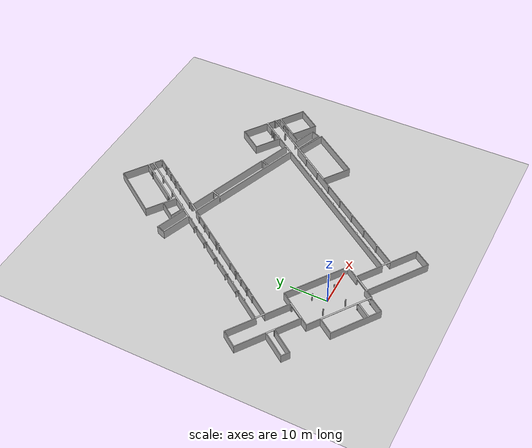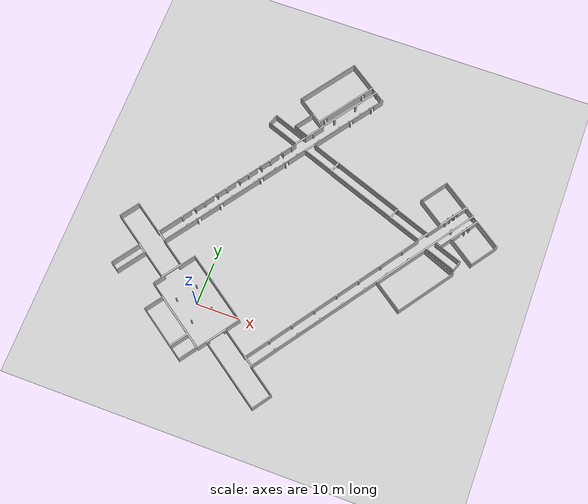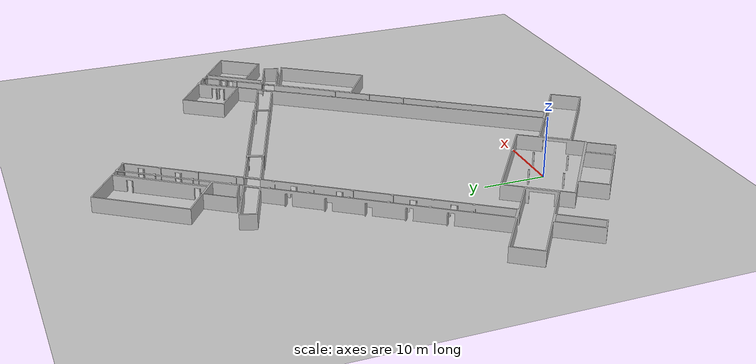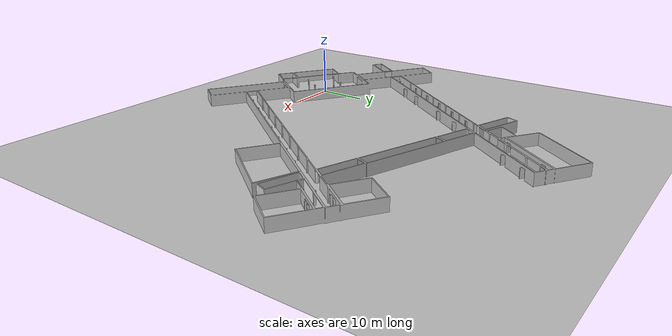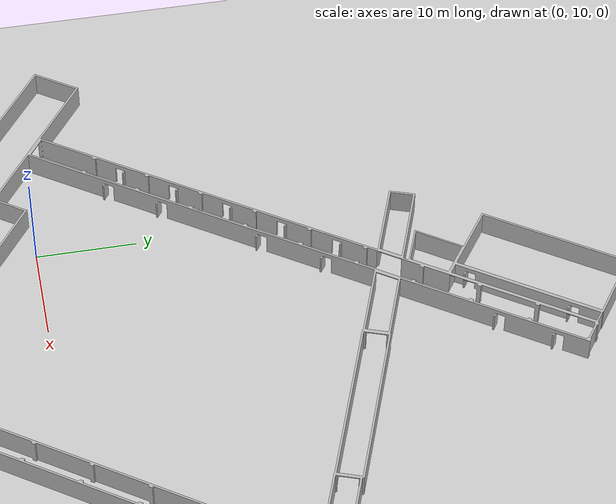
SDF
<?xml version='1.0' encoding='utf-8'?>
<sdf version="1.6">
  <world name="floorplan:frontiers_brsu_building_c">
    <gravity>0 0 -9.8</gravity>
    <physics default="0" name="default_physics" type="ode">
      <max_step_size>0.001</max_step_size>
      <real_time_factor>1</real_time_factor>
      <real_time_update_rate>1000</real_time_update_rate>
    </physics>
    <scene>
      <ambient>0.6 0.6 0.6 1</ambient>
      <background>0.4 0.4 0.4 1</background>
      <shadows>false</shadows>
    </scene>
    <include>
      <uri>model://sun</uri>
    </include>
    <include>
      <uri>model://ground_plane</uri>
      <pose>0 0 0 0 0 0</pose>
    </include>
    <include>
      <uri>model://frontiers_brsu_building_c</uri>
      <static>true</static>
      <pose>-0.0 0.0 0.0 0.0 0.0 0.0</pose>
    </include>

    <include>
      <name>door-instance-11</name>
      <uri>model://door</uri>
      <static>true</static>
      <pose>5.291222880221585 39.76682895871661 0.0 0.0 -0.0 2.530727415391777</pose>

    </include>

    <include>
      <name>door-instance-15</name>
      <uri>model://door</uri>
      <static>true</static>
      <pose>47.12435039399328 38.821343677728066 0.0 0.0 -0.0 -0.6108652381979464</pose>

    </include>

    <include>
      <name>door-instance-17</name>
      <uri>model://door</uri>
      <static>false</static>
      <pose>50.34763718586369 36.01502540330631 0.0 0.0 -0.0 2.530727415391847</pose>
      <plugin name="adversarial_joint_plugin" filename="libadversarial_joint_plugin.so">
        <joint>door:joint-door-hinge</joint>
        <x>1.4</x>
        <near>1.3</near>
        <y>0</y>
      </plugin>
    </include>

    <include>
      <name>door-instance-2</name>
      <uri>model://door</uri>
      <static>true</static>
      <pose>-3.576863844486187 22.83044392993724 0.0 0.0 -0.0 -0.6108652381980157</pose>

    </include>

    <include>
      <name>door-instance-14</name>
      <uri>model://door</uri>
      <static>false</static>
      <pose>46.35575796928288 37.723679938380805 0.0 0.0 -0.0 -0.6108652381979464</pose>
      <plugin name="initial_plugin" filename="libinitial_plugin.so">
          <joint>door:joint-door-hinge</joint>
          <position>1.4</position>
        </plugin>
    </include>

    <include>
      <name>door-instance-8</name>
      <uri>model://door</uri>
      <static>true</static>
      <pose>-1.5916943559909507 29.937004427248695 0.0 0.0 -0.0 2.530727415391777</pose>

    </include>

    <include>
      <name>door-instance-10</name>
      <uri>model://door</uri>
      <static>true</static>
      <pose>-8.474611592203491 20.107179895780778 0.0 0.0 -0.0 2.530727415391777</pose>

    </include>

    <include>
      <name>door-instance-7</name>
      <uri>model://door</uri>
      <static>true</static>
      <pose>1.8497642621153254 34.851916692982655 0.0 0.0 -0.0 2.530727415391777</pose>

    </include>

    <include>
      <name>door-instance-12</name>
      <uri>model://door</uri>
      <static>false</static>
      <pose>11.361650091922591 50.946860866874445 0.0 0.0 -0.0 -0.610865238197673</pose>
      <plugin name="adversarial_joint_plugin" filename="libadversarial_joint_plugin.so">
        <joint>door:joint-door-hinge</joint>
        <x>1.4</x>
        <near>1.3</near>
        <y>0</y>
      </plugin>
    </include>

    <include>
      <name>door-instance-3</name>
      <uri>model://door</uri>
      <static>true</static>
      <pose>2.7324769553753026 31.841116417116158 0.0 0.0 -0.0 -0.6108652381980157</pose>

    </include>

    <include>
      <name>door-instance-6</name>
      <uri>model://door</uri>
      <static>true</static>
      <pose>6.747512009832617 37.57518072713912 0.0 0.0 -0.0 -0.6108652381980157</pose>

    </include>

    <include>
      <name>door-instance-13</name>
      <uri>model://door</uri>
      <static>false</static>
      <pose>17.510389489605796 59.72817078165252 0.0 0.0 -0.0 -0.610865238197673</pose>
      <plugin name="initial_plugin" filename="libinitial_plugin.so">
          <joint>door:joint-door-hinge</joint>
          <position>1.4</position>
        </plugin>
    </include>

    <include>
      <name>door-instance-4</name>
      <uri>model://door</uri>
      <static>true</static>
      <pose>17.186603151421643 52.48374793319879 0.0 0.0 -0.0 -0.6108652381980157</pose>

    </include>

    <include>
      <name>door-instance-16</name>
      <uri>model://door</uri>
      <static>false</static>
      <pose>51.11622961057409 37.112689142653565 0.0 0.0 -0.0 2.530727415391847</pose>
      <plugin name="initial_plugin" filename="libinitial_plugin.so">
          <joint>door:joint-door-hinge</joint>
          <position>1.4</position>
        </plugin>
    </include>

    <include>
      <name>door-instance-9</name>
      <uri>model://door</uri>
      <static>true</static>
      <pose>-5.033152974097219 25.02209216151474 0.0 0.0 -0.0 2.530727415391777</pose>

    </include>

    <include>
      <name>door-instance-5</name>
      <uri>model://door</uri>
      <static>true</static>
      <pose>20.628061769527907 57.398660198932745 0.0 0.0 -0.0 -0.6108652381980157</pose>

    </include>

    <include>
      <name>door-instance-1</name>
      <uri>model://door</uri>
      <static>true</static>
      <pose>-7.018322462592461 17.91553166420328 0.0 0.0 -0.0 -0.6108652381980157</pose>

    </include>

  </world>
</sdf>

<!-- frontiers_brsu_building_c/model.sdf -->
<sdf version="1.6">
  <model name="frontiers_brsu_building_c">
    <link name="link">
      <visual name="visual">
	    <geometry>
          <mesh>
            <uri>model://frontiers_brsu_building_c/meshes/frontiers_brsu_building_c.stl</uri>
          </mesh>
        </geometry>
      </visual>
      <collision name="collision">
        <geometry>
          <mesh>
            <uri>model://frontiers_brsu_building_c/meshes/frontiers_brsu_building_c.stl</uri>
          </mesh>
        </geometry>
      </collision>
</link>
  <static>1</static>
  </model>
</sdf>

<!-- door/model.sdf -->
<sdf version='1.6'>
  <model name='door'>
    <link name='link_0'>
         <visual name='visual'>
        <pose frame=''>0 0 1 0 -0 0</pose>
        <geometry>
          <box>
            <size>0.9 0.15 2</size>
          </box>
        </geometry>
          	<material>
          <script>
            <uri>model://door/materials/scripts</uri>
            <uri>model://door/materials/textures</uri>
            <name>door</name>
          </script>
        </material>
        <cast_shadows>1</cast_shadows>
        <transparency>0</transparency>
      </visual>
      <collision name='collision'>
        <laser_retro>0</laser_retro>
        <max_contacts>10</max_contacts>
        <pose frame=''>0 0 1 0 -0 0</pose>
        <geometry>
          <box>
            <size>0.9 0.15 2</size>
          </box>
        </geometry>

      </collision>
    </link>
    <static>1</static>
    <allow_auto_disable>1</allow_auto_disable>
  </model>
</sdf>
